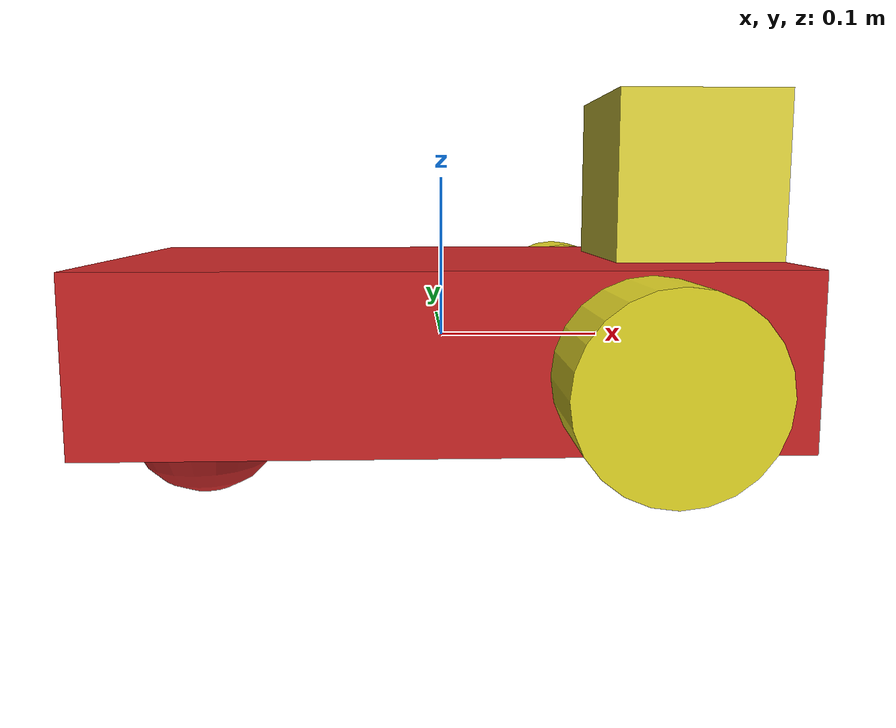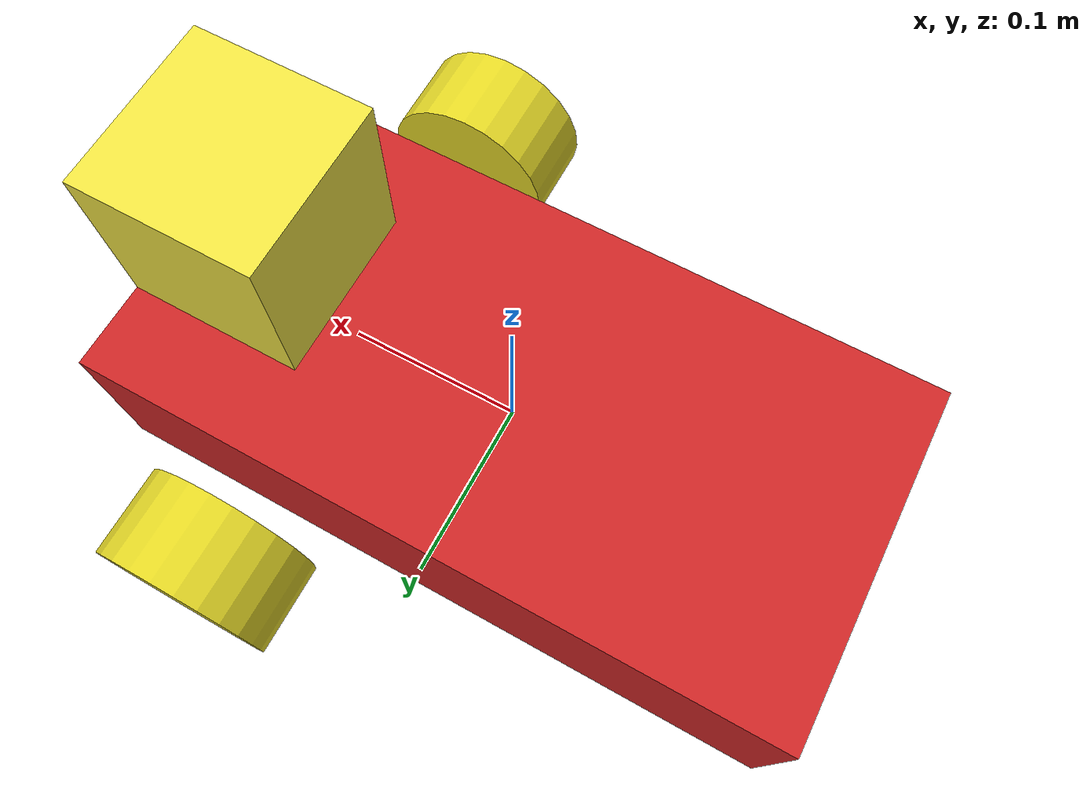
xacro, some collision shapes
<?xml version='1.0'?>
<!--Kelvin Silva, 2/11/2018, Model description for diff drive robot.-->

<robot name="diff_drive" xmlns:xacro="http://wiki.ros.org/wiki/xacro">

<xacro:property name="camera_size" value="0.05"/>
<xacro:property name="camera_mass" value="0.01"/>
<xacro:property name="box_dimen" value=".4 .2 .1"/>
<xacro:property name="caster_pos" value="-0.15 0 -0.05"/>
<xacro:property name="caster_radius" value="0.05"/>

<xacro:include filename="$(find diff_drive_description)/urdf/diff_drive.gazebo"/>
<xacro:include filename="$(find diff_drive_description)/urdf/materials.xacro"/>
<xacro:include filename="$(find diff_drive_description)/urdf/macros.xacro"/>

<!-- Indoor Autonomous Navigation System Test Chassis-->
<link name='chassis'>
	<pose> 0 0 0.1 0 0 0</pose>
	<inertial>
		<mass value="10.0"/>
		<origin xyz="0.0 0 0.1" rpy="0 0 0 "/>
		<inertia
			ixx="0.5" ixy="0" ixz="0"
			iyy="1.0" iyz="0"
			izz="0.1"
		/>
	</inertial>

	<!--collision box property-->

	<collision name='collision'>
		<geometry>
		<box size= "${box_dimen}"/>
		</geometry>
	</collision>

	<!-- visual box property-->
	<visual name='chassis_visual'>
		<origin xyz="0 0 0" rpy=" 0 0 0 "/>
		<geometry>
			<box size= "${box_dimen}"/>
		</geometry>
	</visual>

	<!--A caster is a sphere with no collision-->
	<!-- so within the box, define parameters for the sphere-->
	<!-- the caster represents the front balance for the diff drive-->
	<collision name='caster_collision'>
		<origin xyz="${caster_pos}" rpy=" 0 0 0"/>
		<geometry>
			<sphere radius="0.05"/>
		</geometry>

		<surface>
			<friction>
				<ode>
				 <mu>0</mu>
				 <mu2>0</mu2>
				 <slip1>1.0</slip1>
				 <slip2>1.0</slip2>
				</ode>
			</friction>
		</surface>
	</collision>

	<visual name='caster_visual'>
		<origin xyz="${caster_pos}" rpy=" 0 0 0"/>
		<geometry>
			<sphere radius="${caster_radius}"/>
		</geometry>
	</visual>

</link>

<!-- Indoor Autonomous Navigation System Differential Wheel Test-->
<link name="left_wheel">
	<!--origin xyz="0.1 0.13 0.1" rpy="0 1.5707 1.5707"/-->
	<!-- define collision for wheel-->
	<!-- rpy means roll pitch yaw-->
	<collision name="collision">
		<origin xyz="0 0 0" rpy="0 1.5707 1.5707"/>
		<geometry>
			<cylinder radius="0.05" length="0.05"/>
		</geometry>
	</collision>

	<visual name="left_wheel_visual">
		<origin xyz="0 0 0" rpy="0 1.5707 1.5707"/>
		<geometry>
			<cylinder radius="0.05" length="0.05"/>
		</geometry>
	</visual>

	<inertial>
		<origin xyz="0 0 0" rpy="0 1.5707 1.5707"/>
		<mass value="5"/>
		<cylinder_inertia m="5" r="0.1" h="0.05"/>
		<inertia
		 ixx="1.0" ixy="0.0" ixz="0.0"
		 iyy="1.0" iyz="0.0"
		 izz="1.0"/>
	</inertial>

</link>

<link name="right_wheel">
    <!--origin xyz="0.1 -0.13 0.1" rpy="0 1.5707 1.5707"/-->
    <collision name="collision">
      <origin xyz="0 0 0" rpy="0 1.5707 1.5707"/>
      <geometry>
        <cylinder radius="0.05" length="0.05"/>
      </geometry>
    </collision>
    <visual name="right_wheel_visual">
      <origin xyz="0 0 0" rpy="0 1.5707 1.5707"/>
      <geometry>
        <cylinder radius="0.05" length="0.05"/>
      </geometry>
    </visual>
    <inertial>
      <origin xyz="0 0 0" rpy="0 1.5707 1.5707"/>
      <mass value="5"/>
      <cylinder_inertia m="5" r="0.1" h="0.05"/>
      <inertia
        ixx="1.0" ixy="0.0" ixz="0.0"
        iyy="1.0" iyz="0.0"
        izz="1.0"/>
    </inertial>
  </link>

  <joint type="continuous" name="left_wheel_hinge">
    <origin xyz="0.1 0.15 0" rpy="0 0 0"/>
    <child link="left_wheel"/>
    <parent link="chassis"/>
    <axis xyz="0 1 0" rpy="0 0 0"/>
    <limit effort="100" velocity="100"/>
    <joint_properties damping="0.0" friction="0.0"/>
  </joint>

  <joint type="continuous" name="right_wheel_hinge">
    <origin xyz="0.1 -0.15 0" rpy="0 0 0"/>
    <child link="right_wheel"/>
    <parent link="chassis"/>
    <axis xyz="0 1 0" rpy="0 0 0"/>
    <limit effort="100" velocity="100"/>
    <joint_properties damping="0.0" friction="0.0"/>
  </joint>

  <joint name="hokuyo_joint" type="fixed">
    <axis xyz="0 1 0" />
    <origin xyz=".15 0 .1" rpy="0 0 0"/>
    <parent link="chassis"/>
    <child link="hokuyo"/>
  </joint>

  <!-- Hokuyo Laser -->
  <link name="hokuyo">
    <collision>
      <origin xyz="0 0 0" rpy="0 0 0"/>
      <geometry>
    <box size="0.1 0.1 0.1"/>
      </geometry>
    </collision>

    <visual>
      <origin xyz="0 0 0" rpy="0 0 0"/>
      <geometry>
        <mesh filename="package://diff_drive_description/meshes/hokuyo.dae"/>
      </geometry>
    </visual>

    <inertial>
      <mass value="1e-5" />
      <origin xyz="0 0 0" rpy="0 0 0"/>
      <inertia ixx="1e-6" ixy="0" ixz="0" iyy="1e-6" iyz="0" izz="1e-6" />
    </inertial>

</link>
</robot>

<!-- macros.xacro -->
<robot>
  <macro name="cylinder_inertia" params="m r h">
    <inertia  ixx="${m*(3*r*r+h*h)/12}" ixy = "0" ixz = "0"
      iyy="${m*(3*r*r+h*h)/12}" iyz = "0"
      izz="${m*r*r/2}"
    />
  </macro>
  <macro name="box_inertia" params="m x y z">
    <inertia  ixx="${m*(y*y+z*z)/12}" ixy = "0" ixz = "0"
      iyy="${m*(x*x+z*z)/12}" iyz = "0"
      izz="${m*(x*x+z*z)/12}"
    />
  </macro>
  <macro name="sphere_inertia" params="m r">
    <inertia  ixx="${2*m*r*r/5}" ixy = "0" ixz = "0"
      iyy="${2*m*r*r/5}" iyz = "0"
      izz="${2*m*r*r/5}"
    />
  </macro>
  <macro name="wheel" params="lr tY">
    <link name="${lr}_wheel">
      <collision>
        <origin xyz="0 0 0" rpy="0 ${PI/2} ${PI/2}" />
        <geometry>
          <cylinder length="${wheelWidth}" radius="${wheelRadius}"/>
        </geometry>
      </collision>
      <visual>
        <origin xyz="0 0 0" rpy="0 ${PI/2} ${PI/2}" />
        <geometry>
          <cylinder length="${wheelWidth}" radius="${wheelRadius}"/>
        </geometry>
        <material name="black"/>
      </visual>
      <inertial>
        <origin xyz="0 0 0" rpy="0 ${PI/2} ${PI/2}" />
        <mass value="${wheelMass}"/>
        <cylinder_inertia m="${wheelMass}" r="${wheelRadius}" h="${wheelWidth}"/>
      </inertial>
    </link>
    <gazebo reference="${lr}_wheel">
      <mu1 value="1.0"/>
      <mu2 value="1.0"/>
      <kp  value="10000000.0" />
      <kd  value="1.0" />
      <fdir1 value="1 0 0"/>
      <material>Gazebo/Black</material>
    </gazebo>
    <joint name="${lr}_wheel_hinge" type="continuous">
      <parent link="chassis"/>
      <child link="${lr}_wheel"/>
    <origin xyz="${-wheelPos+chassisLength/2} ${tY*wheelWidth/2+tY*chassisWidth/2} ${wheelRadius}" rpy="0 0 0" />
      <axis xyz="0 1 0" rpy="0 0 0" />
      <limit effort="10000" velocity="10000"/>
      <joint_properties damping="0.0" friction="0.0"/>
    </joint>
    <transmission name="${lr}_trans">
      <type>transmission_interface/SimpleTransmission</type>
      <joint name="${lr}_wheel_hinge">
        <hardwareInterface>EffortJointInterface</hardwareInterface>
      </joint>
      <actuator name="${lr}Motor">
        <hardwareInterface>EffortJointInterface</hardwareInterface>
        <mechanicalReduction>10</mechanicalReduction>
      </actuator>
    </transmission>
  </macro>

</robot>
